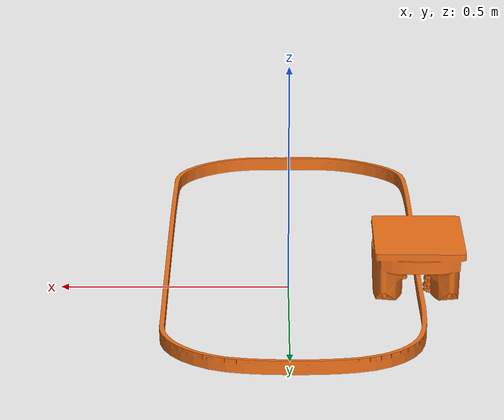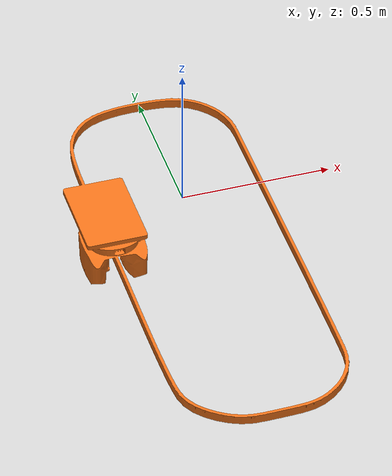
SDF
<?xml version="1.0"?>
<sdf version="1.9">
  <model name="shuttle_1_droit">
    <static>true</static>
    <link name="shuttle_1_droit_link">
      <visual name="shuttle_1_droit_visual">
        <geometry>
          <mesh>
            <uri>model://shuttle_1_droit/meshes/shuttle_1_droit.stl</uri>
          </mesh>
        </geometry>
        <material>
          <ambient>0.95 0.45 0.10 1</ambient>
          <diffuse>0.95 0.45 0.10 1</diffuse>
          <specular>0.20 0.20 0.20 1</specular>
          <emissive>0 0 0 1</emissive>
        </material>
      </visual>
      <collision name="shuttle_1_droit_collision">
        <geometry>
          <mesh>
            <uri>model://shuttle_1_droit/meshes/shuttle_1_droit.stl</uri>
          </mesh>
        </geometry>
      </collision>
    </link>
  </model>
</sdf>
